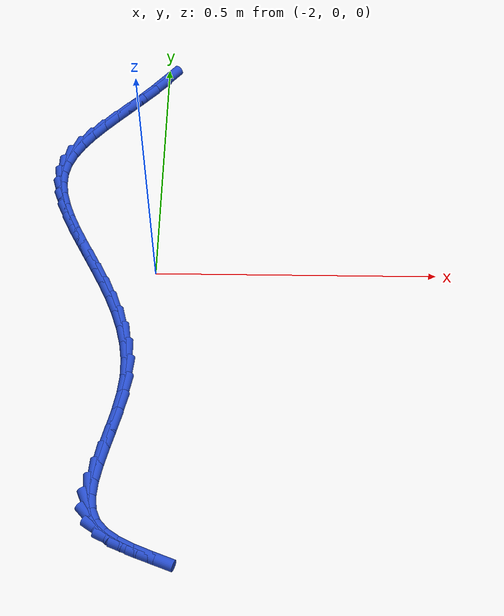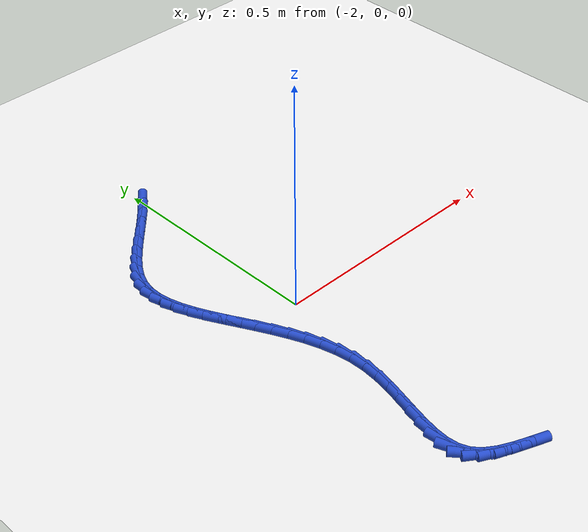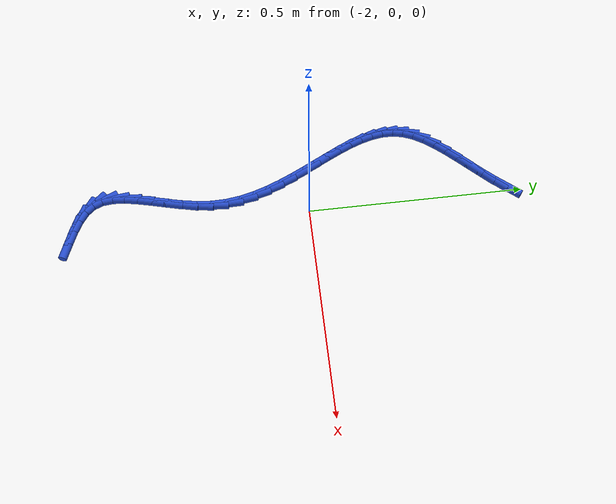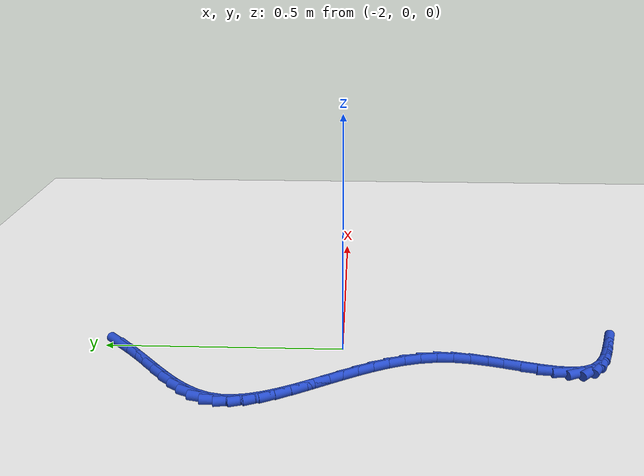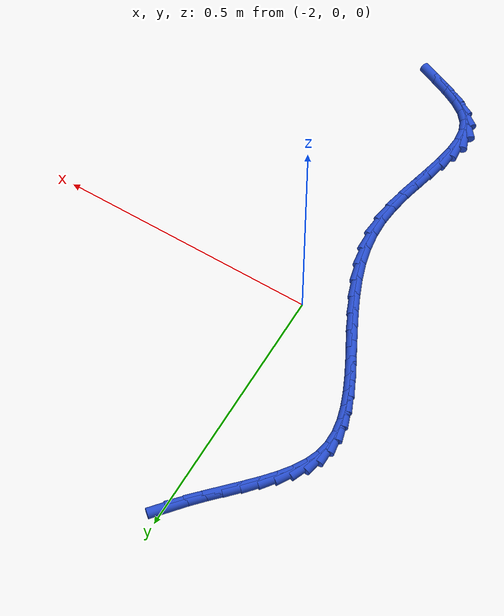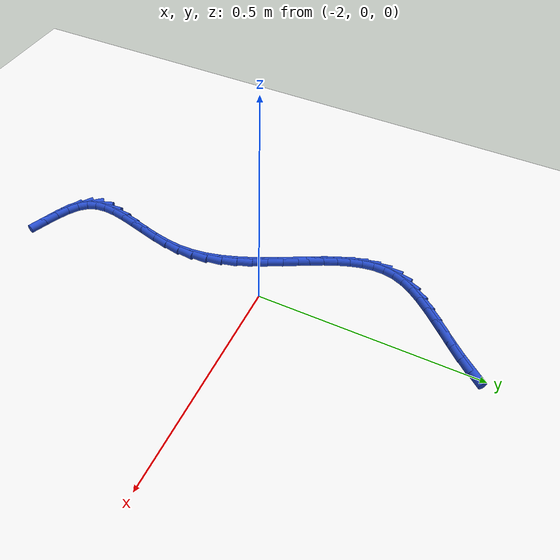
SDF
<sdf version="1.6">
 <world name="default">
  <model name="ground_plane">
   <static>1</static>
   <link name="link">
    <collision name="collision">
     <geometry><plane><normal>0 0 1</normal><size>100 100</size></plane></geometry>
     <surface><friction><ode><mu>100</mu><mu2>50</mu2></ode></friction></surface>
    </collision>
    <visual name="visual">
     <cast_shadows>0</cast_shadows>
     <geometry><plane><normal>0 0 1</normal><size>100 100</size></plane></geometry>
     <material>
      <script><uri>file://media/materials/scripts/gazebo.material</uri><name>Gazebo/WhiteGlow</name></script>
     </material>
    </visual>
   </link>
  </model>
  <model name="line">
   <link name="link_95">
    <pose>-2.007124201981559 0.46327025890198564 0.01 0 1.57 0.8748441438562394</pose>
    <collision name="collision">
     <geometry><cylinder><radius>0.01</radius><length>0.08</length></cylinder></geometry>
    </collision>
    <visual name="visual">
     <material>
      <script><name>Gazebo/Blue</name><uri>file://media/materials/scripts/gazebo.material</uri></script>
     </material>
     <geometry><cylinder><radius>0.01</radius><length>0.08</length></cylinder></geometry>
    </visual>
   </link>
   <link name="link_96">
    <pose>-2.0285197514377318 0.4376588795786313 0.01 0 1.57 0.8296011783929503</pose>
    <collision name="collision">
     <geometry><cylinder><radius>0.01</radius><length>0.08</length></cylinder></geometry>
    </collision>
    <visual name="visual">
     <material>
      <script><name>Gazebo/Blue</name><uri>file://media/materials/scripts/gazebo.material</uri></script>
     </material>
     <geometry><cylinder><radius>0.01</radius><length>0.08</length></cylinder></geometry>
    </visual>
   </link>
   <link name="link_97">
    <pose>-2.0512637638789126 0.4128097348411169 0.01 0 1.57 0.8056948698701757</pose>
    <collision name="collision">
     <geometry><cylinder><radius>0.01</radius><length>0.08</length></cylinder></geometry>
    </collision>
    <visual name="visual">
     <material>
      <script><name>Gazebo/Blue</name><uri>file://media/materials/scripts/gazebo.material</uri></script>
     </material>
     <geometry><cylinder><radius>0.01</radius><length>0.08</length></cylinder></geometry>
    </visual>
   </link>
   <link name="link_98">
    <pose>-2.0745518843574366 0.38855654991639577 0.01 0 1.57 0.8023784521054425</pose>
    <collision name="collision">
     <geometry><cylinder><radius>0.01</radius><length>0.08</length></cylinder></geometry>
    </collision>
    <visual name="visual">
     <material>
      <script><name>Gazebo/Blue</name><uri>file://media/materials/scripts/gazebo.material</uri></script>
     </material>
     <geometry><cylinder><radius>0.01</radius><length>0.08</length></cylinder></geometry>
    </visual>
   </link>
   <link name="link_99">
    <pose>-2.0975797579256406 0.36473305003142137 0.01 0 1.57 0.8204606772928318</pose>
    <collision name="collision">
     <geometry><cylinder><radius>0.01</radius><length>0.08</length></cylinder></geometry>
    </collision>
    <visual name="visual">
     <material>
      <script><name>Gazebo/Blue</name><uri>file://media/materials/scripts/gazebo.material</uri></script>
     </material>
     <geometry><cylinder><radius>0.01</radius><length>0.08</length></cylinder></geometry>
    </visual>
   </link>
   <link name="link_100">
    <pose>-2.119543029635862 0.34117296041314815 0.01 0 1.57 0.8625826870363795</pose>
    <collision name="collision">
     <geometry><cylinder><radius>0.01</radius><length>0.08</length></cylinder></geometry>
    </collision>
    <visual name="visual">
     <material>
      <script><name>Gazebo/Blue</name><uri>file://media/materials/scripts/gazebo.material</uri></script>
     </material>
     <geometry><cylinder><radius>0.01</radius><length>0.08</length></cylinder></geometry>
    </visual>
   </link>
   <link name="link_101">
    <pose>-2.1396373445404357 0.3177100062885291 0.01 0 1.57 0.9335268402398403</pose>
    <collision name="collision">
     <geometry><cylinder><radius>0.01</radius><length>0.08</length></cylinder></geometry>
    </collision>
    <visual name="visual">
     <material>
      <script><name>Gazebo/Blue</name><uri>file://media/materials/scripts/gazebo.material</uri></script>
     </material>
     <geometry><cylinder><radius>0.01</radius><length>0.08</length></cylinder></geometry>
    </visual>
   </link>
   <link name="link_102">
    <pose>-2.1570583476916974 0.2941779128845187 0.01 0 1.57 1.04024682612863</pose>
    <collision name="collision">
     <geometry><cylinder><radius>0.01</radius><length>0.08</length></cylinder></geometry>
    </collision>
    <visual name="visual">
     <material>
      <script><name>Gazebo/Blue</name><uri>file://media/materials/scripts/gazebo.material</uri></script>
     </material>
     <geometry><cylinder><radius>0.01</radius><length>0.08</length></cylinder></geometry>
    </visual>
   </link>
   <link name="link_103">
    <pose>-2.171001684141986 0.27041040542807016 0.01 0 1.57 1.1905169516827703</pose>
    <collision name="collision">
     <geometry><cylinder><radius>0.01</radius><length>0.08</length></cylinder></geometry>
    </collision>
    <visual name="visual">
     <material>
      <script><name>Gazebo/Blue</name><uri>file://media/materials/scripts/gazebo.material</uri></script>
     </material>
     <geometry><cylinder><radius>0.01</radius><length>0.08</length></cylinder></geometry>
    </visual>
   </link>
   <link name="link_104">
    <pose>-2.1806629989436357 0.2462412091461377 0.01 0 1.57 1.382746624216172</pose>
    <collision name="collision">
     <geometry><cylinder><radius>0.01</radius><length>0.08</length></cylinder></geometry>
    </collision>
    <visual name="visual">
     <material>
      <script><name>Gazebo/Blue</name><uri>file://media/materials/scripts/gazebo.material</uri></script>
     </material>
     <geometry><cylinder><radius>0.01</radius><length>0.08</length></cylinder></geometry>
    </visual>
   </link>
   <link name="link_105">
    <pose>-2.1853676362193313 0.22151875640893182 0.01 0 1.57 -1.5700414904617586</pose>
    <collision name="collision">
     <geometry><cylinder><radius>0.01</radius><length>0.08</length></cylinder></geometry>
    </collision>
    <visual name="visual">
     <material>
      <script><name>Gazebo/Blue</name><uri>file://media/materials/scripts/gazebo.material</uri></script>
     </material>
     <geometry><cylinder><radius>0.01</radius><length>0.08</length></cylinder></geometry>
    </visual>
   </link>
   <link name="link_106">
    <pose>-2.185348520466904 0.19619439408373163 0.01 0 1.57 -1.4131438936382872</pose>
    <collision name="collision">
     <geometry><cylinder><radius>0.01</radius><length>0.08</length></cylinder></geometry>
    </collision>
    <visual name="visual">
     <material>
      <script><name>Gazebo/Blue</name><uri>file://media/materials/scripts/gazebo.material</uri></script>
     </material>
     <geometry><cylinder><radius>0.01</radius><length>0.08</length></cylinder></geometry>
    </visual>
   </link>
   <link name="link_107">
    <pose>-2.181226231495498 0.1702634269642881 0.01 0 1.57 -1.2918011859884015</pose>
    <collision name="collision">
     <geometry><cylinder><radius>0.01</radius><length>0.08</length></cylinder></geometry>
    </collision>
    <visual name="visual">
     <material>
      <script><name>Gazebo/Blue</name><uri>file://media/materials/scripts/gazebo.material</uri></script>
     </material>
     <geometry><cylinder><radius>0.01</radius><length>0.08</length></cylinder></geometry>
    </visual>
   </link>
   <link name="link_108">
    <pose>-2.173622803294633 0.1437213247402075 0.01 0 1.57 -1.2030696646359673</pose>
    <collision name="collision">
     <geometry><cylinder><radius>0.01</radius><length>0.08</length></cylinder></geometry>
    </collision>
    <visual name="visual">
     <material>
      <script><name>Gazebo/Blue</name><uri>file://media/materials/scripts/gazebo.material</uri></script>
     </material>
     <geometry><cylinder><radius>0.01</radius><length>0.08</length></cylinder></geometry>
    </visual>
   </link>
   <link name="link_109">
    <pose>-2.1631602698538277 0.11656355710109678 0.01 0 1.57 -1.1419853321699827</pose>
    <collision name="collision">
     <geometry><cylinder><radius>0.01</radius><length>0.08</length></cylinder></geometry>
    </collision>
    <visual name="visual">
     <material>
      <script><name>Gazebo/Blue</name><uri>file://media/materials/scripts/gazebo.material</uri></script>
     </material>
     <geometry><cylinder><radius>0.01</radius><length>0.08</length></cylinder></geometry>
    </visual>
   </link>
   <link name="link_110">
    <pose>-2.1504606651626026 0.08878559373656175 0.01 0 1.57 -1.103962642554265</pose>
    <collision name="collision">
     <geometry><cylinder><radius>0.01</radius><length>0.08</length></cylinder></geometry>
    </collision>
    <visual name="visual">
     <material>
      <script><name>Gazebo/Blue</name><uri>file://media/materials/scripts/gazebo.material</uri></script>
     </material>
     <geometry><cylinder><radius>0.01</radius><length>0.08</length></cylinder></geometry>
    </visual>
   </link>
   <link name="link_111">
    <pose>-2.136146023210475 0.06038290433620947 0.01 0 1.57 -1.08557224470888</pose>
    <collision name="collision">
     <geometry><cylinder><radius>0.01</radius><length>0.08</length></cylinder></geometry>
    </collision>
    <visual name="visual">
     <material>
      <script><name>Gazebo/Blue</name><uri>file://media/materials/scripts/gazebo.material</uri></script>
     </material>
     <geometry><cylinder><radius>0.01</radius><length>0.08</length></cylinder></geometry>
    </visual>
   </link>
   <link name="link_112">
    <pose>-2.1208383779869653 0.031350958589645705 0.01 0 1.57 -1.084602281449661</pose>
    <collision name="collision">
     <geometry><cylinder><radius>0.01</radius><length>0.08</length></cylinder></geometry>
    </collision>
    <visual name="visual">
     <material>
      <script><name>Gazebo/Blue</name><uri>file://media/materials/scripts/gazebo.material</uri></script>
     </material>
     <geometry><cylinder><radius>0.01</radius><length>0.08</length></cylinder></geometry>
    </visual>
   </link>
   <link name="link_113">
    <pose>-2.105159763481592 0.0016852261864775155 0.01 0 1.57 -1.0999015832118453</pose>
    <collision name="collision">
     <geometry><cylinder><radius>0.01</radius><length>0.08</length></cylinder></geometry>
    </collision>
    <visual name="visual">
     <material>
      <script><name>Gazebo/Blue</name><uri>file://media/materials/scripts/gazebo.material</uri></script>
     </material>
     <geometry><cylinder><radius>0.01</radius><length>0.08</length></cylinder></geometry>
    </visual>
   </link>
   <link name="link_114">
    <pose>-2.0897322136838756 -0.02861882318368937 0.01 0 1.57 -1.1311864238618</pose>
    <collision name="collision">
     <geometry><cylinder><radius>0.01</radius><length>0.08</length></cylinder></geometry>
    </collision>
    <visual name="visual">
     <material>
      <script><name>Gazebo/Blue</name><uri>file://media/materials/scripts/gazebo.material</uri></script>
     </material>
     <geometry><cylinder><radius>0.01</radius><length>0.08</length></cylinder></geometry>
    </visual>
   </link>
   <link name="link_115">
    <pose>-2.0751777625833334 -0.0595657198312478 0.01 0 1.57 -1.1788392930892326</pose>
    <collision name="collision">
     <geometry><cylinder><radius>0.01</radius><length>0.08</length></cylinder></geometry>
    </collision>
    <visual name="visual">
     <material>
      <script><name>Gazebo/Blue</name><uri>file://media/materials/scripts/gazebo.material</uri></script>
     </material>
     <geometry><cylinder><radius>0.01</radius><length>0.08</length></cylinder></geometry>
    </visual>
   </link>
   <link name="link_116">
    <pose>-2.062118444169486 -0.09115999406659173 0.01 0 1.57 -1.2436569936053756</pose>
    <collision name="collision">
     <geometry><cylinder><radius>0.01</radius><length>0.08</length></cylinder></geometry>
    </collision>
    <visual name="visual">
     <material>
      <script><name>Gazebo/Blue</name><uri>file://media/materials/scripts/gazebo.material</uri></script>
     </material>
     <geometry><cylinder><radius>0.01</radius><length>0.08</length></cylinder></geometry>
    </visual>
   </link>
   <link name="link_117">
    <pose>-2.051176292431852 -0.1234061762001156 0.01 0 1.57 -1.3264672152892931</pose>
    <collision name="collision">
     <geometry><cylinder><radius>0.01</radius><length>0.08</length></cylinder></geometry>
    </collision>
    <visual name="visual">
     <material>
      <script><name>Gazebo/Blue</name><uri>file://media/materials/scripts/gazebo.material</uri></script>
     </material>
     <geometry><cylinder><radius>0.01</radius><length>0.08</length></cylinder></geometry>
    </visual>
   </link>
   <link name="link_118">
    <pose>-2.04297334135995 -0.15630879654221128 0.01 0 1.57 -1.4275296146555247</pose>
    <collision name="collision">
     <geometry><cylinder><radius>0.01</radius><length>0.08</length></cylinder></geometry>
    </collision>
    <visual name="visual">
     <material>
      <script><name>Gazebo/Blue</name><uri>file://media/materials/scripts/gazebo.material</uri></script>
     </material>
     <geometry><cylinder><radius>0.01</radius><length>0.08</length></cylinder></geometry>
    </visual>
   </link>
   <link name="link_119">
    <pose>-2.0381316249432997 -0.18987238540327328 0.01 0 1.57 -1.5456991265892273</pose>
    <collision name="collision">
     <geometry><cylinder><radius>0.01</radius><length>0.08</length></cylinder></geometry>
    </collision>
    <visual name="visual">
     <material>
      <script><name>Gazebo/Blue</name><uri>file://media/materials/scripts/gazebo.material</uri></script>
     </material>
     <geometry><cylinder><radius>0.01</radius><length>0.08</length></cylinder></geometry>
    </visual>
   </link>
   <link name="link_120">
    <pose>-2.0372723954887078 -0.2241012650862412 0.01 0 1.57 1.476768420966599</pose>
    <collision name="collision">
     <geometry><cylinder><radius>0.01</radius><length>0.08</length></cylinder></geometry>
    </collision>
    <visual name="visual">
     <material>
      <script><name>Gazebo/Blue</name><uri>file://media/materials/scripts/gazebo.material</uri></script>
     </material>
     <geometry><cylinder><radius>0.01</radius><length>0.08</length></cylinder></geometry>
    </visual>
   </link>
   <link name="link_121">
    <pose>-2.040551862392651 -0.2588760089737546 0.01 0 1.57 1.3913596524983172</pose>
    <collision name="collision">
     <geometry><cylinder><radius>0.01</radius><length>0.08</length></cylinder></geometry>
    </collision>
    <visual name="visual">
     <material>
      <script><name>Gazebo/Blue</name><uri>file://media/materials/scripts/gazebo.material</uri></script>
     </material>
     <geometry><cylinder><radius>0.01</radius><length>0.08</length></cylinder></geometry>
    </visual>
   </link>
   <link name="link_122">
    <pose>-2.0468766038115884 -0.2937446608833514 0.01 0 1.57 1.3407586553603479</pose>
    <collision name="collision">
     <geometry><cylinder><radius>0.01</radius><length>0.08</length></cylinder></geometry>
    </collision>
    <visual name="visual">
     <material>
      <script><name>Gazebo/Blue</name><uri>file://media/materials/scripts/gazebo.material</uri></script>
     </material>
     <geometry><cylinder><radius>0.01</radius><length>0.08</length></cylinder></geometry>
    </visual>
   </link>
   <link name="link_123">
    <pose>-2.054945458330358 -0.32819998468501677 0.01 0 1.57 1.3222252345629606</pose>
    <collision name="collision">
     <geometry><cylinder><radius>0.01</radius><length>0.08</length></cylinder></geometry>
    </collision>
    <visual name="visual">
     <material>
      <script><name>Gazebo/Blue</name><uri>file://media/materials/scripts/gazebo.material</uri></script>
     </material>
     <geometry><cylinder><radius>0.01</radius><length>0.08</length></cylinder></geometry>
    </visual>
   </link>
   <link name="link_124">
    <pose>-2.0634572645338 -0.36173474424873847 0.01 0 1.57 1.336785460076989</pose>
    <collision name="collision">
     <geometry><cylinder><radius>0.01</radius><length>0.08</length></cylinder></geometry>
    </collision>
    <visual name="visual">
     <material>
      <script><name>Gazebo/Blue</name><uri>file://media/materials/scripts/gazebo.material</uri></script>
     </material>
     <geometry><cylinder><radius>0.01</radius><length>0.08</length></cylinder></geometry>
    </visual>
   </link>
   <link name="link_125">
    <pose>-2.0711108610067517 -0.39384170344450364 0.01 0 1.57 1.3906726645244532</pose>
    <collision name="collision">
     <geometry><cylinder><radius>0.01</radius><length>0.08</length></cylinder></geometry>
    </collision>
    <visual name="visual">
     <material>
      <script><name>Gazebo/Blue</name><uri>file://media/materials/scripts/gazebo.material</uri></script>
     </material>
     <geometry><cylinder><radius>0.01</radius><length>0.08</length></cylinder></geometry>
    </visual>
   </link>
   <link name="link_126">
    <pose>-2.076605086334053 -0.42401362614229987 0.01 0 1.57 1.4975873884404223</pose>
    <collision name="collision">
     <geometry><cylinder><radius>0.01</radius><length>0.08</length></cylinder></geometry>
    </collision>
    <visual name="visual">
     <material>
      <script><name>Gazebo/Blue</name><uri>file://media/materials/scripts/gazebo.material</uri></script>
     </material>
     <geometry><cylinder><radius>0.01</radius><length>0.08</length></cylinder></geometry>
    </visual>
   </link>
   <link name="link_127">
    <pose>-2.0786387791005416 -0.4517432762121123 0.01 0 1.57 -1.4611496530560462</pose>
    <collision name="collision">
     <geometry><cylinder><radius>0.01</radius><length>0.08</length></cylinder></geometry>
    </collision>
    <visual name="visual">
     <material>
      <script><name>Gazebo/Blue</name><uri>file://media/materials/scripts/gazebo.material</uri></script>
     </material>
     <geometry><cylinder><radius>0.01</radius><length>0.08</length></cylinder></geometry>
    </visual>
   </link>
   <link name="link_128">
    <pose>-2.075910777891058 -0.476523417523929 0.01 0 1.57 -1.1798041034069413</pose>
    <collision name="collision">
     <geometry><cylinder><radius>0.01</radius><length>0.08</length></cylinder></geometry>
    </collision>
    <visual name="visual">
     <material>
      <script><name>Gazebo/Blue</name><uri>file://media/materials/scripts/gazebo.material</uri></script>
     </material>
     <geometry><cylinder><radius>0.01</radius><length>0.08</length></cylinder></geometry>
    </visual>
   </link>
   <link name="link_129">
    <pose>-2.067120753158855 -0.4978472875807956 0.01 0 1.57 -0.8502774893687278</pose>
    <collision name="collision">
     <geometry><cylinder><radius>0.01</radius><length>0.08</length></cylinder></geometry>
    </collision>
    <visual name="visual">
     <material>
      <script><name>Gazebo/Blue</name><uri>file://media/materials/scripts/gazebo.material</uri></script>
     </material>
     <geometry><cylinder><radius>0.01</radius><length>0.08</length></cylinder></geometry>
    </visual>
   </link>
   <link name="link_130">
    <pose>-2.051574954131217 -0.5155534859108424 0.01 0 1.57 -0.6094429057748924</pose>
    <collision name="collision">
     <geometry><cylinder><radius>0.01</radius><length>0.08</length></cylinder></geometry>
    </collision>
    <visual name="visual">
     <material>
      <script><name>Gazebo/Blue</name><uri>file://media/materials/scripts/gazebo.material</uri></script>
     </material>
     <geometry><cylinder><radius>0.01</radius><length>0.08</length></cylinder></geometry>
    </visual>
   </link>
   <link name="link_131">
    <pose>-2.0302567595694576 -0.530435503438005 0.01 0 1.57 -0.46689848187463406</pose>
    <collision name="collision">
     <geometry><cylinder><radius>0.01</radius><length>0.08</length></cylinder></geometry>
    </collision>
    <visual name="visual">
     <material>
      <script><name>Gazebo/Blue</name><uri>file://media/materials/scripts/gazebo.material</uri></script>
     </material>
     <geometry><cylinder><radius>0.01</radius><length>0.08</length></cylinder></geometry>
    </visual>
   </link>
   <link name="link_132">
    <pose>-2.004436981905587 -0.5434504844793776 0.01 0 1.57 -0.3948114671713731</pose>
    <collision name="collision">
     <geometry><cylinder><radius>0.01</radius><length>0.08</length></cylinder></geometry>
    </collision>
    <visual name="visual">
     <material>
      <script><name>Gazebo/Blue</name><uri>file://media/materials/scripts/gazebo.material</uri></script>
     </material>
     <geometry><cylinder><radius>0.01</radius><length>0.08</length></cylinder></geometry>
    </visual>
   </link>
   <link name="link_133">
    <pose>-1.9753864335716123 -0.5555555733520549 0.01 0 1.57 -0.37348526370800145</pose>
    <collision name="collision">
     <geometry><cylinder><radius>0.01</radius><length>0.08</length></cylinder></geometry>
    </collision>
    <visual name="visual">
     <material>
      <script><name>Gazebo/Blue</name><uri>file://media/materials/scripts/gazebo.material</uri></script>
     </material>
     <geometry><cylinder><radius>0.01</radius><length>0.08</length></cylinder></geometry>
    </visual>
   </link>
  </model>
 </world>
</sdf>
